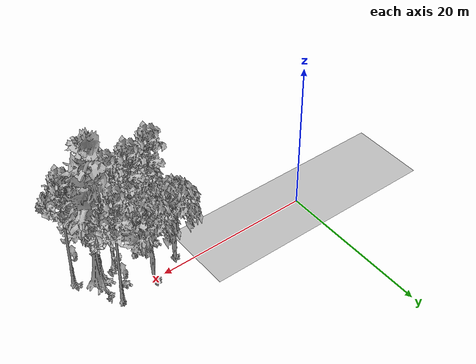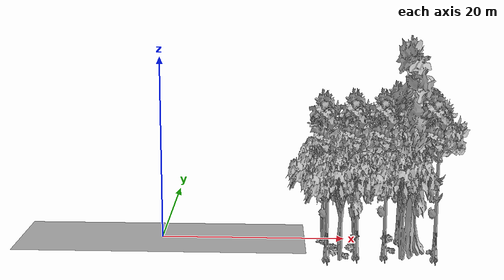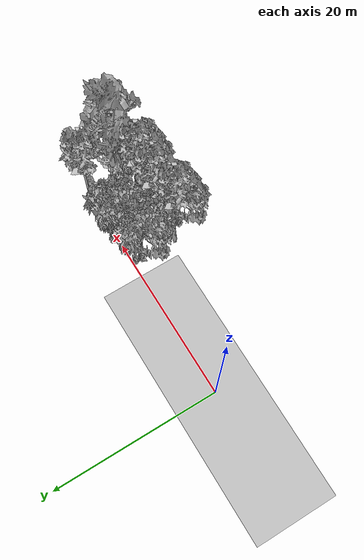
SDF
<sdf version="1.7">
 <world name="default">
  <model name="ground_plane">
   <static>1</static>
   <link name="link">
    <collision name="collision">
     <geometry><plane><normal>0 0 1</normal><size>100 100</size></plane></geometry>
     <surface><contact><ode><min_depth>0.01</min_depth><max_vel>0</max_vel></ode></contact></surface>
    </collision>
    <visual name="grass">
     <cast_shadows>0</cast_shadows>
     <geometry>
      <mesh>
       <scale>0.5814285714285714 0.18142857142857144 0.1</scale>
       <uri>file://grass_plane/meshes/grass_plane.dae</uri>
      </mesh>
     </geometry>
    </visual>
   </link>
  </model>
  <model name="Tree 26">
   <static>1</static>
   <pose>28.944412736091692 -5.225004428628388 0 1.57079 -0 0</pose>
   <link name="link">
    <collision name="collision">
     <geometry><mesh><scale>3.5 5 3.5</scale><uri>model://tree_9/meshes/tree_9.obj</uri></mesh></geometry>
    </collision>
    <visual name="visual">
     <geometry><mesh><scale>3.5 5 3.5</scale><uri>model://tree_9/meshes/tree_9.obj</uri></mesh></geometry>
    </visual>
   </link>
  </model>
  <model name="Tree 69">
   <static>1</static>
   <pose>17.732041511797078 -5.644323763077379 0 1.57079 -0 0</pose>
   <link name="link">
    <collision name="collision">
     <geometry><mesh><scale>3.5 5 3.5</scale><uri>model://tree_9/meshes/tree_9.obj</uri></mesh></geometry>
    </collision>
    <visual name="visual">
     <geometry><mesh><scale>3.5 5 3.5</scale><uri>model://tree_9/meshes/tree_9.obj</uri></mesh></geometry>
    </visual>
   </link>
  </model>
  <model name="Tree 122">
   <static>1</static>
   <pose>18.957331794907702 -6.642873439870074 0 1.57079 -0 0</pose>
   <link name="link">
    <collision name="collision">
     <geometry><mesh><scale>3.5 5 3.5</scale><uri>model://tree_2/meshes/tree_2.obj</uri></mesh></geometry>
    </collision>
    <visual name="visual">
     <geometry><mesh><scale>3.5 5 3.5</scale><uri>model://tree_2/meshes/tree_2.obj</uri></mesh></geometry>
    </visual>
   </link>
  </model>
  <model name="Tree 137">
   <static>1</static>
   <pose>17.533459595373017 -1.2672392935048347 0 1.57079 -0 0</pose>
   <link name="link">
    <collision name="collision">
     <geometry><mesh><scale>3.5 5 3.5</scale><uri>model://tree_2/meshes/tree_2.obj</uri></mesh></geometry>
    </collision>
    <visual name="visual">
     <geometry><mesh><scale>3.5 5 3.5</scale><uri>model://tree_2/meshes/tree_2.obj</uri></mesh></geometry>
    </visual>
   </link>
  </model>
  <model name="Tree 154">
   <static>1</static>
   <pose>23.801030853729472 -4.826271589515692 0 1.57079 -0 0</pose>
   <link name="link">
    <collision name="collision">
     <geometry><mesh><scale>3.5 5 3.5</scale><uri>model://tree_9/meshes/tree_9.obj</uri></mesh></geometry>
    </collision>
    <visual name="visual">
     <geometry><mesh><scale>3.5 5 3.5</scale><uri>model://tree_9/meshes/tree_9.obj</uri></mesh></geometry>
    </visual>
   </link>
  </model>
  <model name="Tree 317">
   <static>1</static>
   <pose>25.96086470017049 0.4356044033833246 0 1.57079 -0 0</pose>
   <link name="link">
    <collision name="collision">
     <geometry><mesh><scale>3.5 5 3.5</scale><uri>model://tree_9/meshes/tree_9.obj</uri></mesh></geometry>
    </collision>
    <visual name="visual">
     <geometry><mesh><scale>3.5 5 3.5</scale><uri>model://tree_9/meshes/tree_9.obj</uri></mesh></geometry>
    </visual>
   </link>
  </model>
  <model name="Tree 347">
   <static>1</static>
   <pose>20.869539160777464 -4.894577173230093 0 1.57079 -0 0</pose>
   <link name="link">
    <collision name="collision">
     <geometry><mesh><scale>3.5 5 3.5</scale><uri>model://tree_9/meshes/tree_9.obj</uri></mesh></geometry>
    </collision>
    <visual name="visual">
     <geometry><mesh><scale>3.5 5 3.5</scale><uri>model://tree_9/meshes/tree_9.obj</uri></mesh></geometry>
    </visual>
   </link>
  </model>
  <model name="Tree 350">
   <static>1</static>
   <pose>20.988569788979532 -0.648393518977203 0 1.57079 -0 0</pose>
   <link name="link">
    <collision name="collision">
     <geometry><mesh><scale>3.5 5 3.5</scale><uri>model://tree_2/meshes/tree_2.obj</uri></mesh></geometry>
    </collision>
    <visual name="visual">
     <geometry><mesh><scale>3.5 5 3.5</scale><uri>model://tree_2/meshes/tree_2.obj</uri></mesh></geometry>
    </visual>
   </link>
  </model>
  <model name="Tree 366">
   <static>1</static>
   <pose>25.272188131074316 -6.052143670603137 0 1.57079 -0 0</pose>
   <link name="link">
    <collision name="collision">
     <geometry><mesh><scale>3.5 5 3.5</scale><uri>model://tree_2/meshes/tree_2.obj</uri></mesh></geometry>
    </collision>
    <visual name="visual">
     <geometry><mesh><scale>3.5 5 3.5</scale><uri>model://tree_2/meshes/tree_2.obj</uri></mesh></geometry>
    </visual>
   </link>
  </model>
  <model name="Tree 384">
   <static>1</static>
   <pose>26.696430011851703 -3.228294329135718 0 1.57079 -0 0</pose>
   <link name="link">
    <collision name="collision">
     <geometry><mesh><scale>3.5 5 3.5</scale><uri>model://tree_4/meshes/tree_4.obj</uri></mesh></geometry>
    </collision>
    <visual name="visual">
     <geometry><mesh><scale>3.5 5 3.5</scale><uri>model://tree_4/meshes/tree_4.obj</uri></mesh></geometry>
    </visual>
   </link>
  </model>
  <model name="Bush 17">
   <static>1</static>
   <pose>17.485150433548753 -1.3317251735689037 0 1.57079 -0 0</pose>
   <link name="link">
    <collision name="collision">
     <geometry><mesh><scale>2 2 2</scale><uri>model://bush_2/meshes/bush_2.obj</uri></mesh></geometry>
     <surface><contact><collide_without_contact>false</collide_without_contact></contact></surface>
    </collision>
    <visual name="visual">
     <geometry><mesh><scale>2 2 2</scale><uri>model://bush_2/meshes/bush_2.obj</uri></mesh></geometry>
    </visual>
   </link>
  </model>
  <model name="Bush 61">
   <static>1</static>
   <pose>19.559227553669018 -5.706846706017624 0 1.57079 -0 0</pose>
   <link name="link">
    <collision name="collision">
     <geometry><mesh><scale>2 2 2</scale><uri>model://bush_2/meshes/bush_2.obj</uri></mesh></geometry>
     <surface><contact><collide_without_contact>false</collide_without_contact></contact></surface>
    </collision>
    <visual name="visual">
     <geometry><mesh><scale>2 2 2</scale><uri>model://bush_2/meshes/bush_2.obj</uri></mesh></geometry>
    </visual>
   </link>
  </model>
  <model name="Bush 168">
   <static>1</static>
   <pose>18.383165548152448 -4.259531331547564 0 1.57079 -0 0</pose>
   <link name="link">
    <collision name="collision">
     <geometry><mesh><scale>2 2 2</scale><uri>model://bush_3/meshes/bush_3.obj</uri></mesh></geometry>
     <surface><contact><collide_without_contact>false</collide_without_contact></contact></surface>
    </collision>
    <visual name="visual">
     <geometry><mesh><scale>2 2 2</scale><uri>model://bush_3/meshes/bush_3.obj</uri></mesh></geometry>
    </visual>
   </link>
  </model>
  <model name="Bush 193">
   <static>1</static>
   <pose>24.629736646065737 -0.9694589003071581 0 1.57079 -0 0</pose>
   <link name="link">
    <collision name="collision">
     <geometry><mesh><scale>2 2 2</scale><uri>model://bush_3/meshes/bush_3.obj</uri></mesh></geometry>
     <surface><contact><collide_without_contact>false</collide_without_contact></contact></surface>
    </collision>
    <visual name="visual">
     <geometry><mesh><scale>2 2 2</scale><uri>model://bush_3/meshes/bush_3.obj</uri></mesh></geometry>
    </visual>
   </link>
  </model>
  <model name="Bush 215">
   <static>1</static>
   <pose>28.770783271558912 -4.50028210028891 0 1.57079 -0 0</pose>
   <link name="link">
    <collision name="collision">
     <geometry><mesh><scale>2 2 2</scale><uri>model://bush_2/meshes/bush_2.obj</uri></mesh></geometry>
     <surface><contact><collide_without_contact>false</collide_without_contact></contact></surface>
    </collision>
    <visual name="visual">
     <geometry><mesh><scale>2 2 2</scale><uri>model://bush_2/meshes/bush_2.obj</uri></mesh></geometry>
    </visual>
   </link>
  </model>
  <model name="Bush 238">
   <static>1</static>
   <pose>21.244303072076647 0.43309078066461026 0 1.57079 -0 0</pose>
   <link name="link">
    <collision name="collision">
     <geometry><mesh><scale>2 2 2</scale><uri>model://bush_2/meshes/bush_2.obj</uri></mesh></geometry>
     <surface><contact><collide_without_contact>false</collide_without_contact></contact></surface>
    </collision>
    <visual name="visual">
     <geometry><mesh><scale>2 2 2</scale><uri>model://bush_2/meshes/bush_2.obj</uri></mesh></geometry>
    </visual>
   </link>
  </model>
  <model name="Bush 262">
   <static>1</static>
   <pose>27.14323593474201 0.03299207317114572 0 1.57079 -0 0</pose>
   <link name="link">
    <collision name="collision">
     <geometry><mesh><scale>2 2 2</scale><uri>model://bush_5/meshes/bush_5.obj</uri></mesh></geometry>
     <surface><contact><collide_without_contact>false</collide_without_contact></contact></surface>
    </collision>
    <visual name="visual">
     <geometry><mesh><scale>2 2 2</scale><uri>model://bush_5/meshes/bush_5.obj</uri></mesh></geometry>
    </visual>
   </link>
  </model>
  <model name="Bush 296">
   <static>1</static>
   <pose>18.50523234585384 -5.328087121266977 0 1.57079 -0 0</pose>
   <link name="link">
    <collision name="collision">
     <geometry><mesh><scale>2 2 2</scale><uri>model://bush_3/meshes/bush_3.obj</uri></mesh></geometry>
     <surface><contact><collide_without_contact>false</collide_without_contact></contact></surface>
    </collision>
    <visual name="visual">
     <geometry><mesh><scale>2 2 2</scale><uri>model://bush_3/meshes/bush_3.obj</uri></mesh></geometry>
    </visual>
   </link>
  </model>
  <model name="Bush 301">
   <static>1</static>
   <pose>25.954971874916012 -2.444441624569638 0 1.57079 -0 0</pose>
   <link name="link">
    <collision name="collision">
     <geometry><mesh><scale>2 2 2</scale><uri>model://bush_3/meshes/bush_3.obj</uri></mesh></geometry>
     <surface><contact><collide_without_contact>false</collide_without_contact></contact></surface>
    </collision>
    <visual name="visual">
     <geometry><mesh><scale>2 2 2</scale><uri>model://bush_3/meshes/bush_3.obj</uri></mesh></geometry>
    </visual>
   </link>
  </model>
  <model name="Bush 304">
   <static>1</static>
   <pose>20.46933931807962 -4.146870666837923 0 1.57079 -0 0</pose>
   <link name="link">
    <collision name="collision">
     <geometry><mesh><scale>2 2 2</scale><uri>model://bush_3/meshes/bush_3.obj</uri></mesh></geometry>
     <surface><contact><collide_without_contact>false</collide_without_contact></contact></surface>
    </collision>
    <visual name="visual">
     <geometry><mesh><scale>2 2 2</scale><uri>model://bush_3/meshes/bush_3.obj</uri></mesh></geometry>
    </visual>
   </link>
  </model>
  <model name="Bush 312">
   <static>1</static>
   <pose>24.56096401995984 -3.8933076015387478 0 1.57079 -0 0</pose>
   <link name="link">
    <collision name="collision">
     <geometry><mesh><scale>2 2 2</scale><uri>model://bush_2/meshes/bush_2.obj</uri></mesh></geometry>
     <surface><contact><collide_without_contact>false</collide_without_contact></contact></surface>
    </collision>
    <visual name="visual">
     <geometry><mesh><scale>2 2 2</scale><uri>model://bush_2/meshes/bush_2.obj</uri></mesh></geometry>
    </visual>
   </link>
  </model>
 </world>
</sdf>
